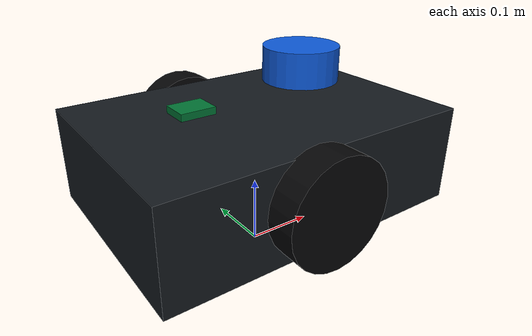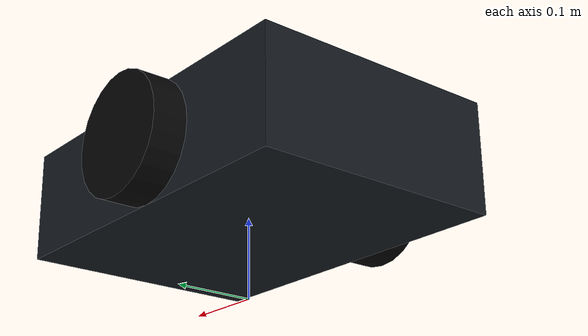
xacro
<?xml version="1.0"?>
<robot xmlns:xacro="http://www.ros.org/wiki/xacro" name="sentinel_rover">
  <xacro:property name="base_length" value="0.46"/>
  <xacro:property name="base_width" value="0.32"/>
  <xacro:property name="base_height" value="0.14"/>
  <xacro:property name="wheel_radius" value="0.075"/>
  <xacro:property name="wheel_width" value="0.045"/>
  <xacro:property name="wheel_separation" value="0.36"/>

  <link name="base_footprint"/>

  <joint name="base_footprint_joint" type="fixed">
    <parent link="base_footprint"/>
    <child link="base_link"/>
    <origin xyz="0 0 ${wheel_radius}" rpy="0 0 0"/>
  </joint>

  <link name="base_link">
    <visual>
      <origin xyz="0 0 ${base_height / 2.0}" rpy="0 0 0"/>
      <geometry><box size="${base_length} ${base_width} ${base_height}"/></geometry>
      <material name="graphite"><color rgba="0.08 0.10 0.12 1"/></material>
    </visual>
    <collision>
      <origin xyz="0 0 ${base_height / 2.0}" rpy="0 0 0"/>
      <geometry><box size="${base_length} ${base_width} ${base_height}"/></geometry>
    </collision>
    <inertial>
      <origin xyz="0 0 ${base_height / 2.0}" rpy="0 0 0"/>
      <mass value="4.8"/>
      <inertia ixx="0.055" ixy="0" ixz="0" iyy="0.083" iyz="0" izz="0.104"/>
    </inertial>
  </link>

  <xacro:macro name="drive_wheel" params="side y">
    <link name="${side}_wheel_link">
      <visual>
        <origin xyz="0 0 0" rpy="1.5708 0 0"/>
        <geometry><cylinder radius="${wheel_radius}" length="${wheel_width}"/></geometry>
        <material name="rubber"><color rgba="0.02 0.02 0.025 1"/></material>
      </visual>
      <collision>
        <origin xyz="0 0 0" rpy="1.5708 0 0"/>
        <geometry><cylinder radius="${wheel_radius}" length="${wheel_width}"/></geometry>
      </collision>
      <inertial>
        <mass value="0.45"/>
        <inertia ixx="0.0013" ixy="0" ixz="0" iyy="0.0013" iyz="0" izz="0.0022"/>
      </inertial>
    </link>
    <joint name="${side}_wheel_joint" type="continuous">
      <parent link="base_link"/>
      <child link="${side}_wheel_link"/>
      <origin xyz="-0.02 ${y} ${wheel_radius}" rpy="0 0 0"/>
      <axis xyz="0 1 0"/>
    </joint>
  </xacro:macro>

  <xacro:drive_wheel side="left" y="${wheel_separation / 2.0}"/>
  <xacro:drive_wheel side="right" y="${-wheel_separation / 2.0}"/>

  <link name="front_caster_link">
    <visual>
      <geometry><sphere radius="0.035"/></geometry>
      <material name="caster"><color rgba="0.6 0.62 0.64 1"/></material>
    </visual>
    <collision><geometry><sphere radius="0.035"/></geometry></collision>
    <inertial>
      <mass value="0.12"/>
      <inertia ixx="0.00005" ixy="0" ixz="0" iyy="0.00005" iyz="0" izz="0.00005"/>
    </inertial>
  </link>
  <joint name="front_caster_joint" type="fixed">
    <parent link="base_link"/>
    <child link="front_caster_link"/>
    <origin xyz="0.18 0 0.035" rpy="0 0 0"/>
  </joint>

  <link name="laser_frame">
    <visual>
      <origin xyz="0 0 0.025" rpy="0 0 0"/>
      <geometry><cylinder radius="0.055" length="0.05"/></geometry>
      <material name="lidar_blue"><color rgba="0.05 0.35 0.85 1"/></material>
    </visual>
    <collision>
      <origin xyz="0 0 0.025" rpy="0 0 0"/>
      <geometry><cylinder radius="0.055" length="0.05"/></geometry>
    </collision>
    <inertial>
      <mass value="0.18"/>
      <inertia ixx="0.0002" ixy="0" ixz="0" iyy="0.0002" iyz="0" izz="0.0002"/>
    </inertial>
  </link>
  <joint name="laser_mount_joint" type="fixed">
    <parent link="base_link"/>
    <child link="laser_frame"/>
    <origin xyz="0.08 0 ${base_height + 0.03}" rpy="0 0 0"/>
  </joint>

  <link name="imu_link">
    <visual>
      <origin xyz="0 0 0.005" rpy="0 0 0"/>
      <geometry><box size="0.05 0.04 0.01"/></geometry>
      <material name="imu_green"><color rgba="0.0 0.45 0.20 1"/></material>
    </visual>
  </link>
  <joint name="imu_joint" type="fixed">
    <parent link="base_link"/>
    <child link="imu_link"/>
    <origin xyz="-0.10 0 ${base_height + 0.015}" rpy="0 0 0"/>
  </joint>

  <gazebo reference="base_link">
    <material>Gazebo/DarkGrey</material>
  </gazebo>
  <gazebo reference="laser_frame">
    <sensor name="sentinel_lidar" type="ray">
      <pose>0 0 0.04 0 0 0</pose>
      <update_rate>12</update_rate>
      <ray>
        <scan>
          <horizontal>
            <samples>720</samples>
            <resolution>1</resolution>
            <min_angle>-3.14159</min_angle>
            <max_angle>3.14159</max_angle>
          </horizontal>
        </scan>
        <range>
          <min>0.12</min>
          <max>8.0</max>
          <resolution>0.01</resolution>
        </range>
        <noise>
          <type>gaussian</type>
          <mean>0.0</mean>
          <stddev>0.01</stddev>
        </noise>
      </ray>
      <plugin name="sentinel_laser_plugin" filename="libgazebo_ros_ray_sensor.so">
        <ros>
          <remapping>~/out:=scan</remapping>
        </ros>
        <output_type>sensor_msgs/LaserScan</output_type>
        <frame_name>laser_frame</frame_name>
      </plugin>
    </sensor>
  </gazebo>

  <gazebo>
    <plugin name="sentinel_diff_drive" filename="libgazebo_ros_diff_drive.so">
      <ros>
        <remapping>cmd_vel:=cmd_vel</remapping>
        <remapping>odom:=odom</remapping>
      </ros>
      <left_joint>left_wheel_joint</left_joint>
      <right_joint>right_wheel_joint</right_joint>
      <wheel_separation>${wheel_separation}</wheel_separation>
      <wheel_diameter>${2.0 * wheel_radius}</wheel_diameter>
      <max_wheel_torque>20</max_wheel_torque>
      <max_wheel_acceleration>1.8</max_wheel_acceleration>
      <publish_odom>true</publish_odom>
      <publish_odom_tf>true</publish_odom_tf>
      <publish_wheel_tf>true</publish_wheel_tf>
      <odometry_frame>odom</odometry_frame>
      <robot_base_frame>base_footprint</robot_base_frame>
    </plugin>
  </gazebo>
</robot>
